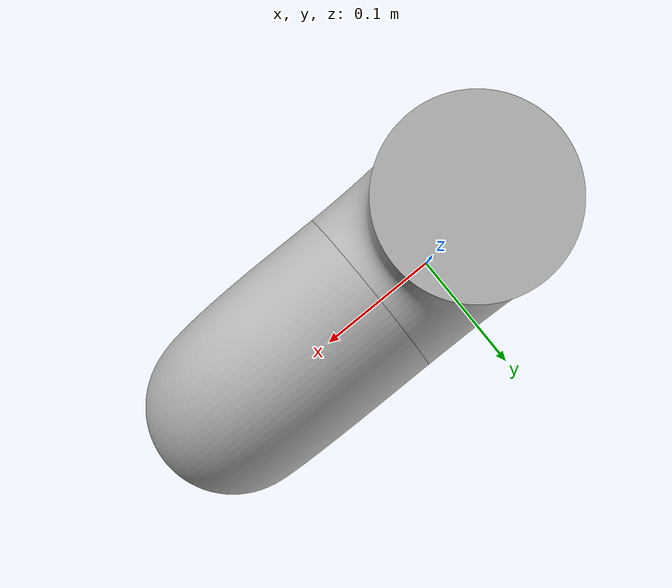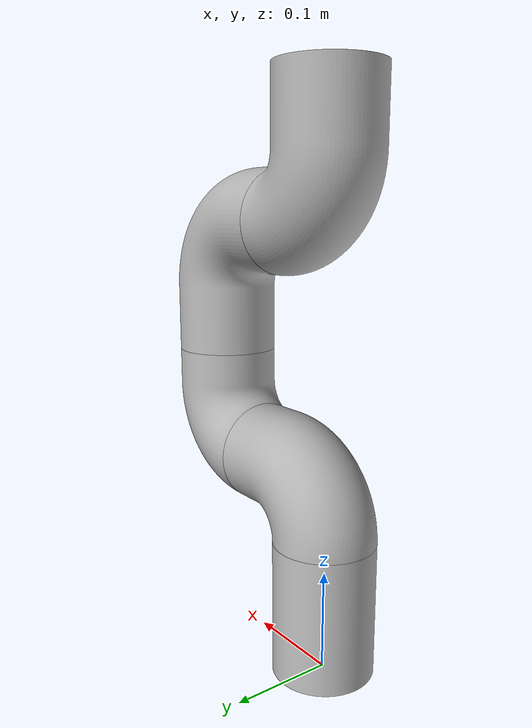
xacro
<?xml version="1.0"?>
<robot xmlns:xacro="http://www.ros.org/wiki/xacro" name="ARM_URDF">
    <xacro:arg name="initial_positions_file" default="initial_positions.yaml" />

    <!-- Import ARM_URDF urdf file -->
    <xacro:include filename="$(find arm_urdf_description)/urdf/ARM_URDF.xacro" />

    <!-- Import control_xacro -->
    <xacro:include filename="ARM_URDF.ros2_control.xacro" />

    <xacro:ARM_URDF_ros2_control name="FakeSystem" initial_positions_file="$(arg initial_positions_file)"/>

</robot>

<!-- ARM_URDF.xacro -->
<robot name="ARM_URDF" xmlns:xacro="http://www.ros.org/wiki/xacro">

<xacro:include filename="$(find arm_urdf_description)/urdf/materials.xacro" />
<xacro:include filename="$(find arm_urdf_description)/urdf/ARM_URDF.ros2control" />
<xacro:include filename="$(find arm_urdf_description)/urdf/ARM_URDF.gazebo" />
<link name="base_link">
  <inertial>
    <origin xyz="0.0 0.0 0.06699999999999999" rpy="0 0 0"/>
    <mass value="8.26160328077776"/>
    <inertia ixx="0.017526" iyy="0.017526" izz="0.010327" ixy="-0.0" iyz="0.0" ixz="0.0"/>
  </inertial>
  <visual>
    <origin xyz="0 0 0" rpy="0 0 0"/>
    <geometry>
      <mesh filename="file://$(find arm_urdf_description)/meshes/base_link.stl" scale="0.001 0.001 0.001"/>
    </geometry>
    <material name="silver"/>
  </visual>
  <collision>
    <origin xyz="0 0 0" rpy="0 0 0"/>
    <geometry>
      <mesh filename="file://$(find arm_urdf_description)/meshes/base_link.stl" scale="0.001 0.001 0.001"/>
    </geometry>
  </collision>
</link>

<link name="link_1_1">
  <inertial>
    <origin xyz="0.03409229981274909 1.689262962637549e-17 0.05196869962289674" rpy="0 0 0"/>
    <mass value="8.452838387896813"/>
    <inertia ixx="0.012119" iyy="0.018842" izz="0.017289" ixy="0.0" iyz="0.0" ixz="-0.003809"/>
  </inertial>
  <visual>
    <origin xyz="-0.0 -0.0 -0.134" rpy="0 0 0"/>
    <geometry>
      <mesh filename="file://$(find arm_urdf_description)/meshes/link_1_1.stl" scale="0.001 0.001 0.001"/>
    </geometry>
    <material name="silver"/>
  </visual>
  <collision>
    <origin xyz="-0.0 -0.0 -0.134" rpy="0 0 0"/>
    <geometry>
      <mesh filename="file://$(find arm_urdf_description)/meshes/link_1_1.stl" scale="0.001 0.001 0.001"/>
    </geometry>
  </collision>
</link>

<link name="link_2_1">
  <inertial>
    <origin xyz="0.05196869824188208 0.0 0.034092300619272264" rpy="0 0 0"/>
    <mass value="8.452838604806468"/>
    <inertia ixx="0.017289" iyy="0.018842" izz="0.012119" ixy="-0.0" iyz="0.0" ixz="-0.003809"/>
  </inertial>
  <visual>
    <origin xyz="-0.1 -0.0 -0.199" rpy="0 0 0"/>
    <geometry>
      <mesh filename="file://$(find arm_urdf_description)/meshes/link_2_1.stl" scale="0.001 0.001 0.001"/>
    </geometry>
    <material name="silver"/>
  </visual>
  <collision>
    <origin xyz="-0.1 -0.0 -0.199" rpy="0 0 0"/>
    <geometry>
      <mesh filename="file://$(find arm_urdf_description)/meshes/link_2_1.stl" scale="0.001 0.001 0.001"/>
    </geometry>
  </collision>
</link>

<link name="link_3_1">
  <inertial>
    <origin xyz="-0.022789241059808646 -5.646000370810786e-18 0.0914664013743382" rpy="0 0 0"/>
    <mass value="12.645293907219887"/>
    <inertia ixx="0.037067" iyy="0.047047" izz="0.025787" ixy="0.0" iyz="-0.0" ixz="0.012023"/>
  </inertial>
  <visual>
    <origin xyz="-0.165 -0.0 -0.299" rpy="0 0 0"/>
    <geometry>
      <mesh filename="file://$(find arm_urdf_description)/meshes/link_3_1.stl" scale="0.001 0.001 0.001"/>
    </geometry>
    <material name="silver"/>
  </visual>
  <collision>
    <origin xyz="-0.165 -0.0 -0.299" rpy="0 0 0"/>
    <geometry>
      <mesh filename="file://$(find arm_urdf_description)/meshes/link_3_1.stl" scale="0.001 0.001 0.001"/>
    </geometry>
  </collision>
</link>

<link name="link_4_1">
  <inertial>
    <origin xyz="-0.05251244098847685 -1.4003373770471254e-17 0.048958049634713896" rpy="0 0 0"/>
    <mass value="10.196876161332685"/>
    <inertia ixx="0.02827" iyy="0.029684" izz="0.01416" ixy="0.0" iyz="0.0" ixz="0.004891"/>
  </inertial>
  <visual>
    <origin xyz="-0.065 -0.0 -0.432" rpy="0 0 0"/>
    <geometry>
      <mesh filename="file://$(find arm_urdf_description)/meshes/link_4_1.stl" scale="0.001 0.001 0.001"/>
    </geometry>
    <material name="silver"/>
  </visual>
  <collision>
    <origin xyz="-0.065 -0.0 -0.432" rpy="0 0 0"/>
    <geometry>
      <mesh filename="file://$(find arm_urdf_description)/meshes/link_4_1.stl" scale="0.001 0.001 0.001"/>
    </geometry>
  </collision>
</link>

<joint name="link_1 to base_link" type="continuous">
  <origin xyz="0.0 0.0 0.134" rpy="0 0 0"/>
  <parent link="base_link"/>
  <child link="link_1_1"/>
  <axis xyz="0.0 0.0 1.0"/>
</joint>

<joint name="link_2 to link_1" type="continuous">
  <origin xyz="0.1 0.0 0.065" rpy="0 0 0"/>
  <parent link="link_1_1"/>
  <child link="link_2_1"/>
  <axis xyz="1.0 0.0 0.0"/>
</joint>

<joint name="link_3 to link_2" type="continuous">
  <origin xyz="0.065 0.0 0.1" rpy="0 0 0"/>
  <parent link="link_2_1"/>
  <child link="link_3_1"/>
  <axis xyz="0.0 0.0 1.0"/>
</joint>

<joint name="link_4 to link_3" type="continuous">
  <origin xyz="-0.1 0.0 0.133" rpy="0 0 0"/>
  <parent link="link_3_1"/>
  <child link="link_4_1"/>
  <axis xyz="-1.0 0.0 0.0"/>
</joint>

</robot>

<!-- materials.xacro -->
<robot name="ARM_URDF" xmlns:xacro="http://www.ros.org/wiki/xacro" >

<material name="silver">
  <color rgba="0.700 0.700 0.700 1.000"/>
</material>

</robot>

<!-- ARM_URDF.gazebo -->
<robot name="ARM_URDF" xmlns:xacro="http://www.ros.org/wiki/xacro" >

<xacro:property name="body_color" value="Gazebo/Silver" />

<gazebo reference="base_link">
  <material>${body_color}</material>
  <mu1>0.2</mu1>
  <mu2>0.2</mu2>
  <self_collide>true</self_collide>
  <gravity>true</gravity>
</gazebo>

<gazebo reference="link_1_1">
  <material>${body_color}</material>
  <mu1>0.2</mu1>
  <mu2>0.2</mu2>
  <self_collide>true</self_collide>
</gazebo>

<gazebo reference="link_2_1">
  <material>${body_color}</material>
  <mu1>0.2</mu1>
  <mu2>0.2</mu2>
  <self_collide>true</self_collide>
</gazebo>

<gazebo reference="link_3_1">
  <material>${body_color}</material>
  <mu1>0.2</mu1>
  <mu2>0.2</mu2>
  <self_collide>true</self_collide>
</gazebo>

<gazebo reference="link_4_1">
  <material>${body_color}</material>
  <mu1>0.2</mu1>
  <mu2>0.2</mu2>
  <self_collide>true</self_collide>
</gazebo>

</robot>
